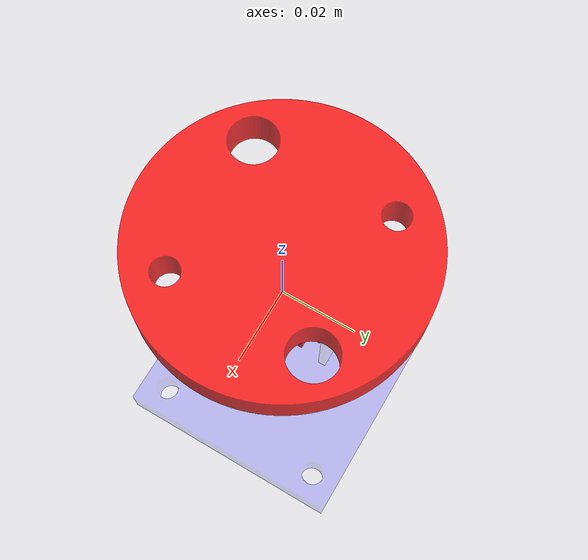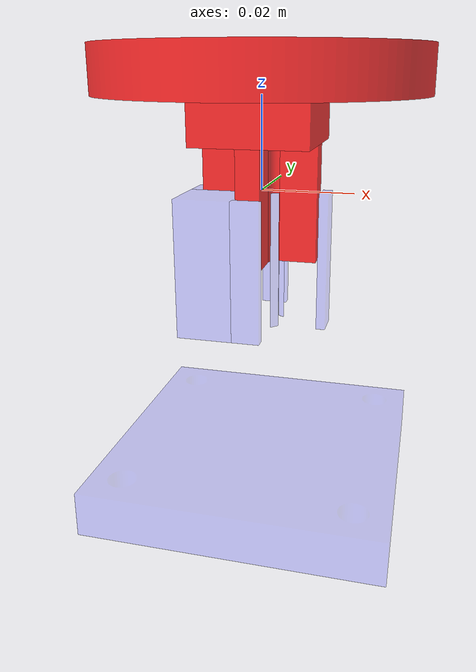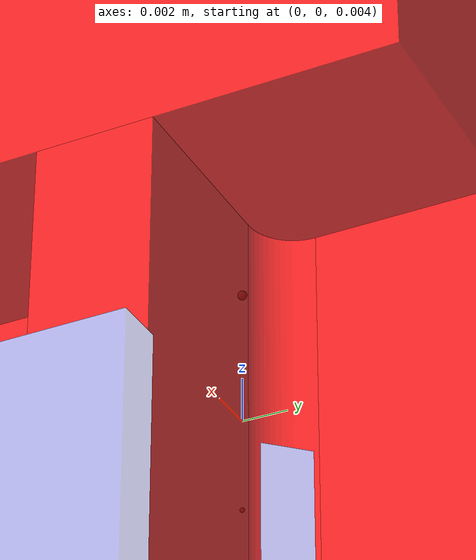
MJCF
<mujoco>
    <option timestep=".001">
        <flag energy="enable" contact="enable" override="enable"/>
    </option>

    <default>
        <default class="hole_geom">
            <geom xyaxes="1 0 0 0 1 0" rgba="0 0 1 0.2"/>
        </default>
        <site size="0.0002" />
        <geom friction="10000" />
    </default>

    <visual>
        <global offwidth="960" offheight="720"/>
    </visual>

    <asset>
        <mesh name="peg1" file="../asset/cross/cross_peg/decomposition/Body1.stl" />
        <mesh name="peg2" file="../asset/cross/cross_peg/decomposition/Body2.stl" />
        <mesh name="peg3" file="../asset/cross/cross_peg/decomposition/Body3.stl" />
        <mesh name="peg4" file="../asset/cross/cross_peg/decomposition/Body4.stl" />
        <mesh name="peg5" file="../asset/cross/cross_peg/decomposition/Body5.stl" />
        <mesh name="peg6" file="../asset/cross/cross_peg/decomposition/Body6.stl" />
        <mesh name="peg7" file="../asset/cross/cross_peg/decomposition/Body7.stl" />
        <mesh name="peg8" file="../asset/cross/cross_peg/decomposition/Body8.stl" />
        <mesh name="peg9" file="../asset/cross/cross_peg/decomposition/Body9.stl" />

        <mesh name="hole1" file="../asset/cross/cross_hole/decomposition/Body1.stl" />
        <mesh name="hole2" file="../asset/cross/cross_hole/decomposition/Body2.stl" />
        <mesh name="hole3" file="../asset/cross/cross_hole/decomposition/Body3.stl" />
        <mesh name="hole4" file="../asset/cross/cross_hole/decomposition/Body4.stl" />
        <mesh name="hole5" file="../asset/cross/cross_hole/decomposition/Body5.stl" />
        <mesh name="hole6" file="../asset/cross/cross_hole/decomposition/Body6.stl" />
        <mesh name="hole7" file="../asset/cross/cross_hole/decomposition/Body7.stl" />
        <mesh name="hole8" file="../asset/cross/cross_hole/decomposition/Body8.stl" />
        <mesh name="hole9" file="../asset/cross/cross_hole/decomposition/Body9.stl" />

    </asset>

    <worldbody>
        <site name="world" pos="0 0 0" size="0.0001" />

        <light name="top-light" pos="0.0 0.0 0.5" mode="targetbodycom" target="peg" castshadow="false" ambient=".8 .8 .8" />

        <body name="hole" pos="0 0 0">

            <camera name="track" mode="track" pos="-0.050 -0.050 0.025" euler="60 -45 -30" fovy="69.4"/>

            <inertial pos="0 0 0" mass="0.1" diaginertia="0.1 0.1 0.1" />

            <geom type="mesh" mesh="hole1" class="hole_geom"/>
            <geom type="mesh" mesh="hole2" class="hole_geom"/>
            <geom type="mesh" mesh="hole3" class="hole_geom"/>
            <geom type="mesh" mesh="hole4" class="hole_geom"/>
            <geom type="mesh" mesh="hole5" class="hole_geom"/>
            <geom type="mesh" mesh="hole6" class="hole_geom"/>
            <geom type="mesh" mesh="hole7" class="hole_geom"/>
            <geom type="mesh" mesh="hole8" class="hole_geom"/>
            <geom type="mesh" mesh="hole9" class="hole_geom"/>

        </body>

        <body name="peg" pos="0 0 +0.010">
            <inertial pos="0 0 0" mass="1.0" diaginertia="0.1 0.1 0.1" />

            <site name="peg/origin" pos="0 0 0" />
            <site name="peg/sensor" pos="0 0 0" />

            <geom type="mesh" mesh="peg1" xyaxes="1 0 0 0 1 0" rgba="1 0 0 0.8"/>
            <geom type="mesh" mesh="peg2" xyaxes="1 0 0 0 1 0" rgba="1 0 0 0.8"/>
            <geom type="mesh" mesh="peg3" xyaxes="1 0 0 0 1 0" rgba="1 0 0 0.8"/>
            <geom type="mesh" mesh="peg4" xyaxes="1 0 0 0 1 0" rgba="1 0 0 0.8"/>
            <geom type="mesh" mesh="peg5" xyaxes="1 0 0 0 1 0" rgba="1 0 0 0.8"/>
            <geom type="mesh" mesh="peg6" xyaxes="1 0 0 0 1 0" rgba="1 0 0 0.8"/>
            <geom type="mesh" mesh="peg7" xyaxes="1 0 0 0 1 0" rgba="1 0 0 0.8"/>
            <geom type="mesh" mesh="peg8" xyaxes="1 0 0 0 1 0" rgba="1 0 0 0.8"/>
            <geom type="mesh" mesh="peg9" xyaxes="1 0 0 0 1 0" rgba="1 0 0 0.8"/>

            <joint name="trans_x" type="slide" axis="1 0 0" limited="false"/>
            <joint name="trans_y" type="slide" axis="0 1 0" limited="false"/>
            <joint name="trans_z" type="slide" axis="0 0 1" limited="false"/>
            <joint name="hinge_x" type="hinge" axis="1 0 0" limited="false"/>
            <joint name="hinge_y" type="hinge" axis="0 1 0" limited="false"/>
            <joint name="hinge_z" type="hinge" axis="0 0 1" limited="false"/>
        </body>

    </worldbody>

    <actuator>
        <position name="x" forcelimited="true" forcerange="-20 20" joint="trans_x" kp="100000" kv="100" />
        <position name="y" forcelimited="true" forcerange="-20 20" joint="trans_y" kp="100000" kv="100" />
        <position name="z" forcelimited="true" forcerange="-20 20" joint="trans_z" kp="100000" kv="100" />
        <position name="rx" forcelimited="true" forcerange="-5 5" joint="hinge_x" kp="50" kv="5" />
        <position name="ry" forcelimited="true" forcerange="-5 5" joint="hinge_y" kp="50" kv="5"/>
        <position name="rz" forcelimited="true" forcerange="-5 5" joint="hinge_z" kp="50" kv="5"/>
    </actuator>

    <sensor>
        <force name="force_sensor" site="peg/sensor" />
        <torque name="torque_sensor" site="peg/sensor" />
        <framepos name="peg_pos" objtype="site" objname="peg/origin"/>
        <framequat name="peg_quat" objtype="site" objname="peg/origin"/>
    </sensor>
</mujoco>
